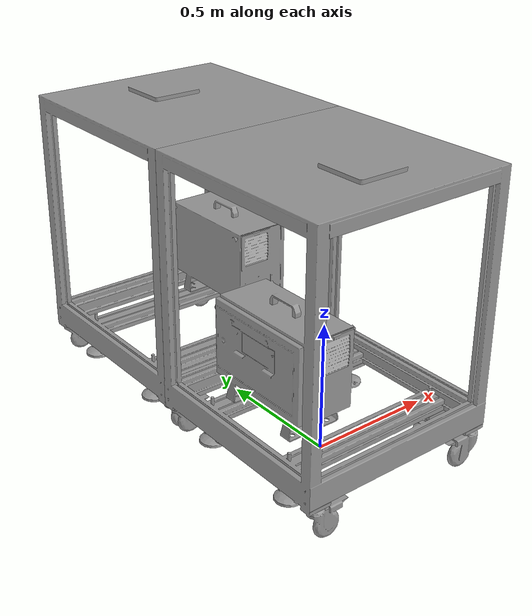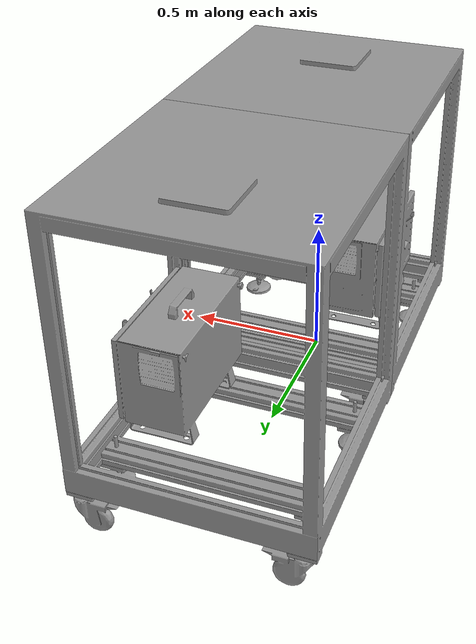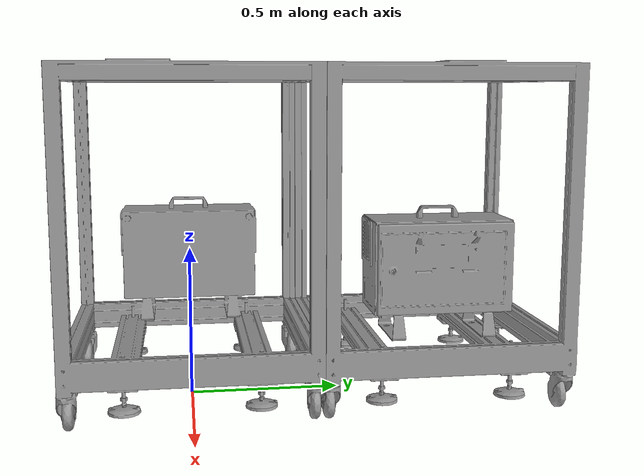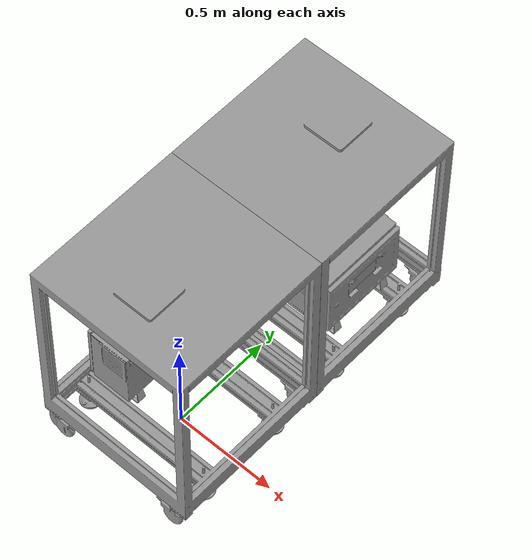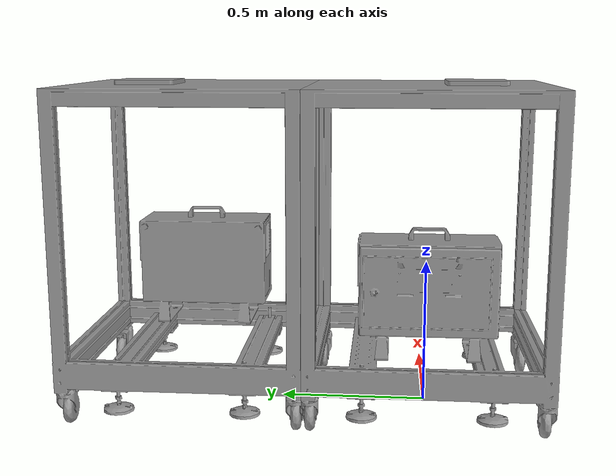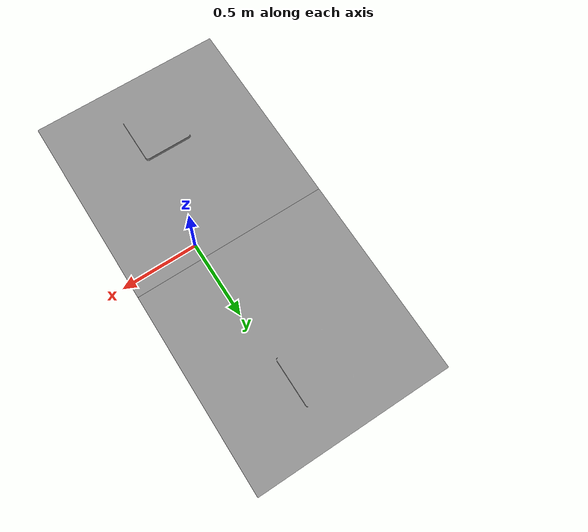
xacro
<?xml version="1.0"?>
<robot xmlns:xacro="http://wiki.ros.org/xacro" name="ur">

  <link name="world">
  </link>

  <joint name="world_table1" type="fixed">
    <parent link="world" />
    <child link="table1_link" />
    <axis xyz="1 1 1" />
    <origin xyz="0.0 0.0 0.0" rpy="0 0 ${pi}"/>
  </joint>

  <link name="table1_link">
    <visual>
      <geometry>
        <mesh filename="package://ur_e_description/meshes/table/table.stl" scale="1 1 1"/>
      </geometry>
    </visual>

    <collision>
      <geometry>
        <mesh filename="package://ur_e_description/meshes/table/table.stl" scale="1 1 1"/>
      </geometry>
    </collision>

    <inertial>
      <origin xyz="0 0 0" rpy="0 0 0"/>
      <mass value="10"/>
      <inertia
        ixx="1.0" ixy="0.0" ixz="0.0"
        iyy="1.0" iyz="0.0"
        izz="1.0"/>
    </inertial>
  </link>

  <gazebo reference="table1_link">
    <material>Gazebo/Grey</material>
  </gazebo>

  <joint name="world_table2" type="fixed">
    <parent link="world" />
    <child link="table2_link" />
    <axis xyz="1 1 1" />
    <origin xyz="0.0 0.8 0.0" rpy="0 0 0"/>
  </joint>

  <link name="table2_link">
    <visual>
      <geometry>
        <mesh filename="package://ur_e_description/meshes/table/table.stl" scale="1 1 1"/>
      </geometry>
    </visual>

    <collision>
      <geometry>
        <mesh filename="package://ur_e_description/meshes/table/table.stl" scale="1 1 1"/>
      </geometry>
    </collision>

    <inertial>
      <origin xyz="0 0 0" rpy="0 0 0"/>
      <mass value="10"/>
      <inertia
        ixx="1.0" ixy="0.0" ixz="0.0"
        iyy="1.0" iyz="0.0"
        izz="1.0"/>
    </inertial>
  </link>

  <gazebo reference="table2_link">
    <material>Gazebo/Grey</material>
  </gazebo>

</robot>
